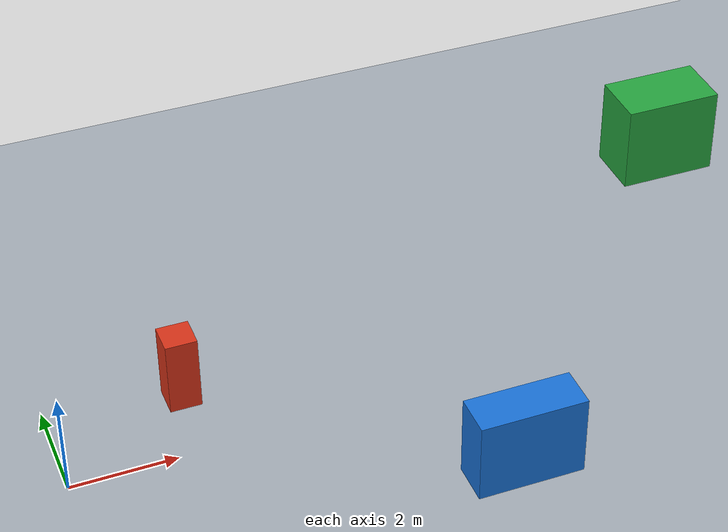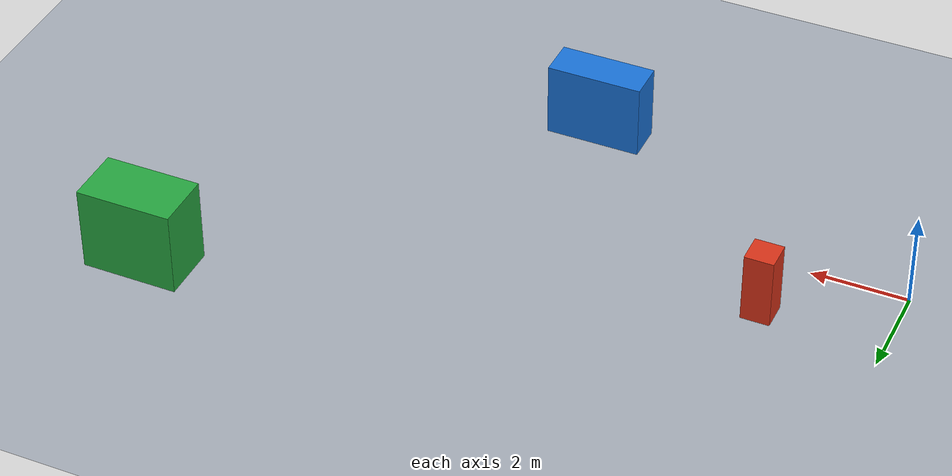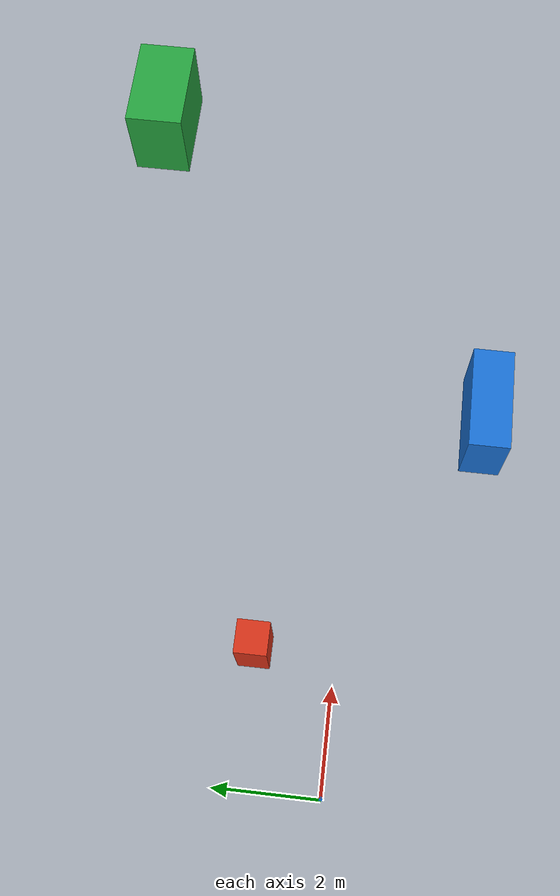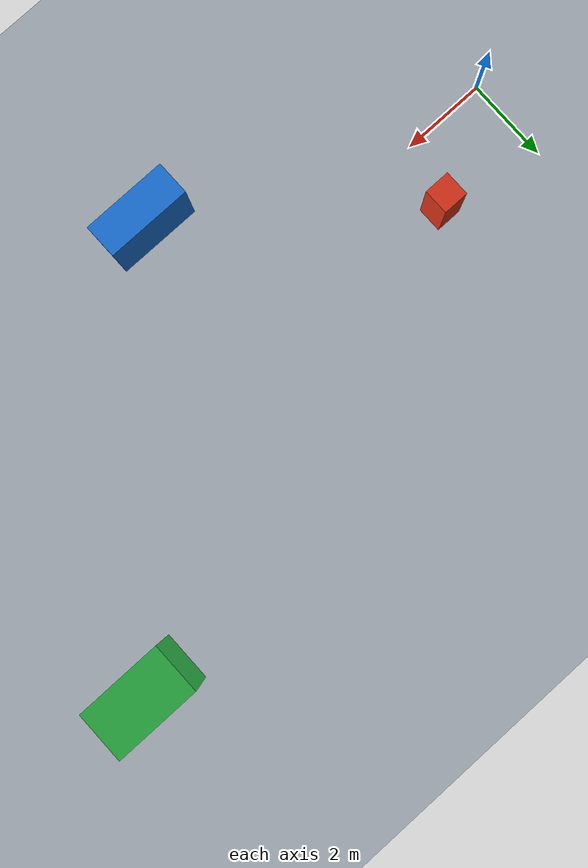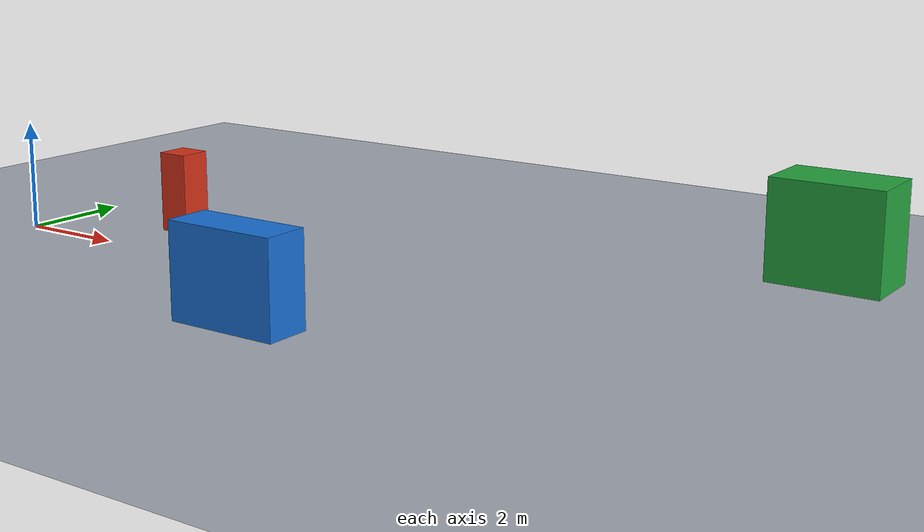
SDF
<?xml version="1.0" ?>
<sdf version="1.6">
  <world name="salus_empty">
    <plugin filename="ignition-gazebo-physics-system" name="ignition::gazebo::systems::Physics"/>
    <plugin filename="ignition-gazebo-user-commands-system" name="ignition::gazebo::systems::UserCommands"/>
    <plugin filename="ignition-gazebo-scene-broadcaster-system" name="ignition::gazebo::systems::SceneBroadcaster"/>
    <plugin filename="ignition-gazebo-sensors-system" name="ignition::gazebo::systems::Sensors"><render_engine>ogre2</render_engine></plugin>
    <plugin filename="ignition-gazebo-navsat-system" name="ignition::gazebo::systems::NavSat"/>
    <spherical_coordinates><surface_model>EARTH_WGS84</surface_model><latitude_deg>-31.4858037</latitude_deg><longitude_deg>-64.2410570</longitude_deg><elevation>0.0</elevation></spherical_coordinates>
    <physics name="physics" type="dart"><max_step_size>0.003</max_step_size><real_time_factor>1</real_time_factor></physics>
    <gravity>0 0 -9.81</gravity>
    <scene>
      <ambient>0.45 0.45 0.45 1</ambient>
      <background>0.70 0.78 0.88 1</background>
      <shadows>true</shadows>
    </scene>
    <light name="sun" type="directional">
      <cast_shadows>true</cast_shadows>
      <pose>0 0 10 0 0 0</pose>
      <diffuse>0.9 0.9 0.85 1</diffuse>
      <specular>0.2 0.2 0.2 1</specular>
      <attenuation><range>1000</range><constant>0.9</constant><linear>0.01</linear><quadratic>0.001</quadratic></attenuation>
      <direction>-0.5 0.2 -0.9</direction>
    </light>
    <model name="ground_plane">
      <static>true</static>
      <link name="link">
        <collision name="collision"><geometry><plane><normal>0 0 1</normal><size>200 200</size></plane></geometry></collision>
        <visual name="visual">
          <geometry><plane><normal>0 0 1</normal><size>200 200</size></plane></geometry>
          <material><ambient>0.55 0.58 0.62 1</ambient><diffuse>0.65 0.68 0.72 1</diffuse><specular>0.05 0.05 0.05 1</specular></material>
        </visual>
      </link>
    </model>
    <!-- The three static targets are mirrored by config/obstacle_drag_geometry.yaml. -->
    <model name="obstacle_near_post">
      <static>true</static>
      <pose>2.5 1.5 0.75 0 0 0</pose>
      <link name="link">
        <collision name="collision"><geometry><box><size>0.6 0.6 1.5</size></box></geometry></collision>
        <visual name="visual"><geometry><box><size>0.6 0.6 1.5</size></box></geometry><material><ambient>0.85 0.20 0.10 1</ambient><diffuse>0.85 0.20 0.10 1</diffuse></material></visual>
      </link>
    </model>
    <model name="obstacle_mid_wall">
      <static>true</static>
      <pose>7.5 -2.5 0.8 0 0 0</pose>
      <link name="link">
        <collision name="collision"><geometry><box><size>2.0 0.8 1.6</size></box></geometry></collision>
        <visual name="visual"><geometry><box><size>2.0 0.8 1.6</size></box></geometry><material><ambient>0.10 0.45 0.85 1</ambient><diffuse>0.10 0.45 0.85 1</diffuse></material></visual>
      </link>
    </model>
    <model name="obstacle_far_box">
      <static>true</static>
      <pose>14.0 5.0 0.9 0 0 0</pose>
      <link name="link">
        <collision name="collision"><geometry><box><size>2.0 1.2 1.8</size></box></geometry></collision>
        <visual name="visual"><geometry><box><size>2.0 1.2 1.8</size></box></geometry><material><ambient>0.15 0.65 0.25 1</ambient><diffuse>0.15 0.65 0.25 1</diffuse></material></visual>
      </link>
    </model>
  </world>
</sdf>
